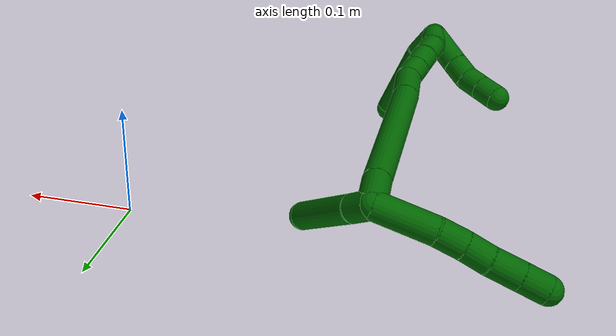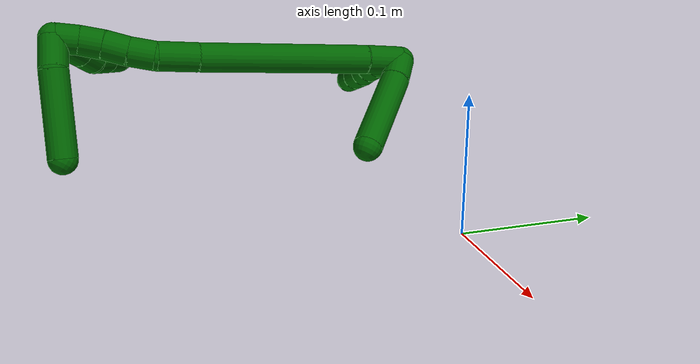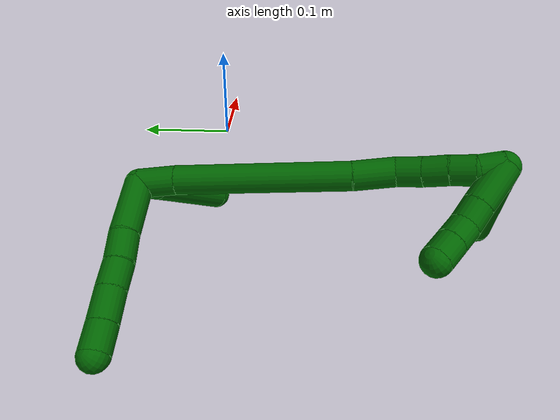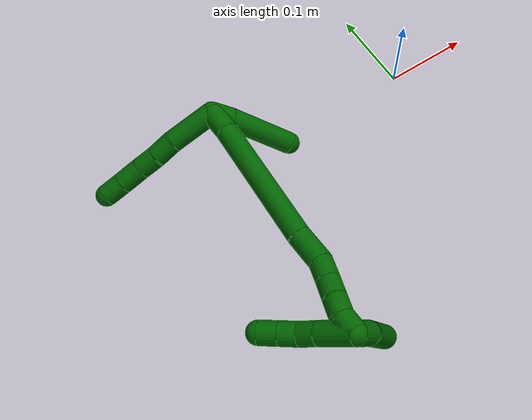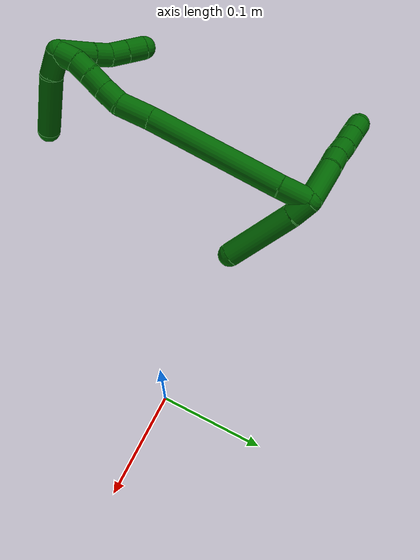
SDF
<sdf version="1.7">
 <world name="default">
  <model name="6">
   <static>0</static>
   <link name="6">
    <collision name="collision-cylinder-e_1_2_8">
     <pose>0.026761 -0.00076 -0.003194 2.90809 1.44873 2.87802</pose>
     <geometry><cylinder><radius>0.0125</radius><length>0.053922</length></cylinder></geometry>
     <surface>
      <friction><ode><mu>1.16</mu><mu2>1.16</mu2><slip1>0</slip1><slip2>0</slip2></ode></friction>
      <contact><ode><kp>1e+06</kp><kd>1</kd><max_vel>0</max_vel><min_depth>0.001</min_depth></ode></contact>
     </surface>
    </collision>
    <visual name="visual-cylinder-e_1_2_8">
     <pose>0.026761 -0.00076 -0.003194 2.90809 1.44873 2.87802</pose>
     <geometry><cylinder><radius>0.0125</radius><length>0.053922</length></cylinder></geometry>
     <material><ambient>0 0.392157 0.003922 1</ambient></material>
    </visual>
    <collision name="collision-cylinder-e_2_8_9">
     <pose>0.065595 -0.001481 -0.006166 -0.170965 1.55214 -0.16782</pose>
     <geometry><cylinder><radius>0.0125</radius><length>0.024152</length></cylinder></geometry>
     <surface>
      <friction><ode><mu>1.16</mu><mu2>1.16</mu2><slip1>0</slip1><slip2>0</slip2></ode></friction>
      <contact><ode><kp>1e+06</kp><kd>1</kd><max_vel>0</max_vel><min_depth>0.001</min_depth></ode></contact>
     </surface>
    </collision>
    <visual name="visual-cylinder-e_2_8_9">
     <pose>0.065595 -0.001481 -0.006166 -0.170965 1.55214 -0.16782</pose>
     <geometry><cylinder><radius>0.0125</radius><length>0.024152</length></cylinder></geometry>
     <material><ambient>0 0.392157 0.003922 1</ambient></material>
    </visual>
    <collision name="collision-cylinder-e_3_9_10">
     <pose>0.088869 -0.000332 -0.006255 -1.84441 1.46815 -1.74419</pose>
     <geometry><cylinder><radius>0.0125</radius><length>0.022518</length></cylinder></geometry>
     <surface>
      <friction><ode><mu>1.16</mu><mu2>1.16</mu2><slip1>0</slip1><slip2>0</slip2></ode></friction>
      <contact><ode><kp>1e+06</kp><kd>1</kd><max_vel>0</max_vel><min_depth>0.001</min_depth></ode></contact>
     </surface>
    </collision>
    <visual name="visual-cylinder-e_3_9_10">
     <pose>0.088869 -0.000332 -0.006255 -1.84441 1.46815 -1.74419</pose>
     <geometry><cylinder><radius>0.0125</radius><length>0.022518</length></cylinder></geometry>
     <material><ambient>0 0.392157 0.003922 1</ambient></material>
    </visual>
    <collision name="collision-cylinder-e_4_10_11">
     <pose>0.113372 0.001067 -0.007075 -2.62543 1.52694 -2.60337</pose>
     <geometry><cylinder><radius>0.0125</radius><length>0.026631</length></cylinder></geometry>
     <surface>
      <friction><ode><mu>1.16</mu><mu2>1.16</mu2><slip1>0</slip1><slip2>0</slip2></ode></friction>
      <contact><ode><kp>1e+06</kp><kd>1</kd><max_vel>0</max_vel><min_depth>0.001</min_depth></ode></contact>
     </surface>
    </collision>
    <visual name="visual-cylinder-e_4_10_11">
     <pose>0.113372 0.001067 -0.007075 -2.62543 1.52694 -2.60337</pose>
     <geometry><cylinder><radius>0.0125</radius><length>0.026631</length></cylinder></geometry>
     <material><ambient>0 0.392157 0.003922 1</ambient></material>
    </visual>
    <collision name="collision-cylinder-e_5_11_6">
     <pose>0.138037 0.001787 -0.008204 -2.53397 1.50433 -2.49495</pose>
     <geometry><cylinder><radius>0.0125</radius><length>0.022776</length></cylinder></geometry>
     <surface>
      <friction><ode><mu>1.16</mu><mu2>1.16</mu2><slip1>0</slip1><slip2>0</slip2></ode></friction>
      <contact><ode><kp>1e+06</kp><kd>1</kd><max_vel>0</max_vel><min_depth>0.001</min_depth></ode></contact>
     </surface>
    </collision>
    <visual name="visual-cylinder-e_5_11_6">
     <pose>0.138037 0.001787 -0.008204 -2.53397 1.50433 -2.49495</pose>
     <geometry><cylinder><radius>0.0125</radius><length>0.022776</length></cylinder></geometry>
     <material><ambient>0 0.392157 0.003922 1</ambient></material>
    </visual>
    <collision name="collision-cylinder-e_1_2_12">
     <pose>-0.005018 0.000103 0.010534 -0.009766 -0.444502 0.002207</pose>
     <geometry><cylinder><radius>0.0125</radius><length>0.023338</length></cylinder></geometry>
     <surface>
      <friction><ode><mu>1.16</mu><mu2>1.16</mu2><slip1>0</slip1><slip2>0</slip2></ode></friction>
      <contact><ode><kp>1e+06</kp><kd>1</kd><max_vel>0</max_vel><min_depth>0.001</min_depth></ode></contact>
     </surface>
    </collision>
    <visual name="visual-cylinder-e_1_2_12">
     <pose>-0.005018 0.000103 0.010534 -0.009766 -0.444502 0.002207</pose>
     <geometry><cylinder><radius>0.0125</radius><length>0.023338</length></cylinder></geometry>
     <material><ambient>0 0.392157 0.003922 1</ambient></material>
    </visual>
    <collision name="collision-cylinder-e_2_12_5">
     <pose>-0.024049 -0.002892 0.056612 0.086933 -0.374281 -0.016471</pose>
     <geometry><cylinder><radius>0.0125</radius><length>0.076662</length></cylinder></geometry>
     <surface>
      <friction><ode><mu>1.16</mu><mu2>1.16</mu2><slip1>0</slip1><slip2>0</slip2></ode></friction>
      <contact><ode><kp>1e+06</kp><kd>1</kd><max_vel>0</max_vel><min_depth>0.001</min_depth></ode></contact>
     </surface>
    </collision>
    <visual name="visual-cylinder-e_2_12_5">
     <pose>-0.024049 -0.002892 0.056612 0.086933 -0.374281 -0.016471</pose>
     <geometry><cylinder><radius>0.0125</radius><length>0.076662</length></cylinder></geometry>
     <material><ambient>0 0.392157 0.003922 1</ambient></material>
    </visual>
    <collision name="collision-cylinder-e_1_2_13">
     <pose>-0.000781 -0.014338 0.007172 1.10698 -0.048667 -0.030076</pose>
     <geometry><cylinder><radius>0.0125</radius><length>0.0321</length></cylinder></geometry>
     <surface>
      <friction><ode><mu>1.16</mu><mu2>1.16</mu2><slip1>0</slip1><slip2>0</slip2></ode></friction>
      <contact><ode><kp>1e+06</kp><kd>1</kd><max_vel>0</max_vel><min_depth>0.001</min_depth></ode></contact>
     </surface>
    </collision>
    <visual name="visual-cylinder-e_1_2_13">
     <pose>-0.000781 -0.014338 0.007172 1.10698 -0.048667 -0.030076</pose>
     <geometry><cylinder><radius>0.0125</radius><length>0.0321</length></cylinder></geometry>
     <material><ambient>0 0.392157 0.003922 1</ambient></material>
    </visual>
    <collision name="collision-cylinder-e_2_13_14">
     <pose>0.000383 -0.094285 0.048349 1.09261 0.026312 0.015999</pose>
     <geometry><cylinder><radius>0.0125</radius><length>0.147849</length></cylinder></geometry>
     <surface>
      <friction><ode><mu>1.16</mu><mu2>1.16</mu2><slip1>0</slip1><slip2>0</slip2></ode></friction>
      <contact><ode><kp>1e+06</kp><kd>1</kd><max_vel>0</max_vel><min_depth>0.001</min_depth></ode></contact>
     </surface>
    </collision>
    <visual name="visual-cylinder-e_2_13_14">
     <pose>0.000383 -0.094285 0.048349 1.09261 0.026312 0.015999</pose>
     <geometry><cylinder><radius>0.0125</radius><length>0.147849</length></cylinder></geometry>
     <material><ambient>0 0.392157 0.003922 1</ambient></material>
    </visual>
    <collision name="collision-cylinder-e_3_14_15">
     <pose>0.001242 -0.17577 0.090541 1.09469 -0.060752 -0.037033</pose>
     <geometry><cylinder><radius>0.0125</radius><length>0.035789</length></cylinder></geometry>
     <surface>
      <friction><ode><mu>1.16</mu><mu2>1.16</mu2><slip1>0</slip1><slip2>0</slip2></ode></friction>
      <contact><ode><kp>1e+06</kp><kd>1</kd><max_vel>0</max_vel><min_depth>0.001</min_depth></ode></contact>
     </surface>
    </collision>
    <visual name="visual-cylinder-e_3_14_15">
     <pose>0.001242 -0.17577 0.090541 1.09469 -0.060752 -0.037033</pose>
     <geometry><cylinder><radius>0.0125</radius><length>0.035789</length></cylinder></geometry>
     <material><ambient>0 0.392157 0.003922 1</ambient></material>
    </visual>
    <collision name="collision-cylinder-e_4_15_16">
     <pose>0.002271 -0.202076 0.101726 1.29088 0.192484 0.14514</pose>
     <geometry><cylinder><radius>0.0125</radius><length>0.022116</length></cylinder></geometry>
     <surface>
      <friction><ode><mu>1.16</mu><mu2>1.16</mu2><slip1>0</slip1><slip2>0</slip2></ode></friction>
      <contact><ode><kp>1e+06</kp><kd>1</kd><max_vel>0</max_vel><min_depth>0.001</min_depth></ode></contact>
     </surface>
    </collision>
    <visual name="visual-cylinder-e_4_15_16">
     <pose>0.002271 -0.202076 0.101726 1.29088 0.192484 0.14514</pose>
     <geometry><cylinder><radius>0.0125</radius><length>0.022116</length></cylinder></geometry>
     <material><ambient>0 0.392157 0.003922 1</ambient></material>
    </visual>
    <collision name="collision-cylinder-e_5_16_17">
     <pose>0.006289 -0.22272 0.106669 1.38261 0.181036 0.149942</pose>
     <geometry><cylinder><radius>0.0125</radius><length>0.021137</length></cylinder></geometry>
     <surface>
      <friction><ode><mu>1.16</mu><mu2>1.16</mu2><slip1>0</slip1><slip2>0</slip2></ode></friction>
      <contact><ode><kp>1e+06</kp><kd>1</kd><max_vel>0</max_vel><min_depth>0.001</min_depth></ode></contact>
     </surface>
    </collision>
    <visual name="visual-cylinder-e_5_16_17">
     <pose>0.006289 -0.22272 0.106669 1.38261 0.181036 0.149942</pose>
     <geometry><cylinder><radius>0.0125</radius><length>0.021137</length></cylinder></geometry>
     <material><ambient>0 0.392157 0.003922 1</ambient></material>
    </visual>
    <collision name="collision-cylinder-e_6_17_18">
     <pose>0.010269 -0.242609 0.11129 1.30098 0.203983 0.155453</pose>
     <geometry><cylinder><radius>0.0125</radius><length>0.020504</length></cylinder></geometry>
     <surface>
      <friction><ode><mu>1.16</mu><mu2>1.16</mu2><slip1>0</slip1><slip2>0</slip2></ode></friction>
      <contact><ode><kp>1e+06</kp><kd>1</kd><max_vel>0</max_vel><min_depth>0.001</min_depth></ode></contact>
     </surface>
    </collision>
    <visual name="visual-cylinder-e_6_17_18">
     <pose>0.010269 -0.242609 0.11129 1.30098 0.203983 0.155453</pose>
     <geometry><cylinder><radius>0.0125</radius><length>0.020504</length></cylinder></geometry>
     <material><ambient>0 0.392157 0.003922 1</ambient></material>
    </visual>
    <collision name="collision-cylinder-e_7_18_1">
     <pose>0.011578 -0.26163 0.118112 1.15325 -0.074937 -0.048749</pose>
     <geometry><cylinder><radius>0.0125</radius><length>0.020504</length></cylinder></geometry>
     <surface>
      <friction><ode><mu>1.16</mu><mu2>1.16</mu2><slip1>0</slip1><slip2>0</slip2></ode></friction>
      <contact><ode><kp>1e+06</kp><kd>1</kd><max_vel>0</max_vel><min_depth>0.001</min_depth></ode></contact>
     </surface>
    </collision>
    <visual name="visual-cylinder-e_7_18_1">
     <pose>0.011578 -0.26163 0.118112 1.15325 -0.074937 -0.048749</pose>
     <geometry><cylinder><radius>0.0125</radius><length>0.020504</length></cylinder></geometry>
     <material><ambient>0 0.392157 0.003922 1</ambient></material>
    </visual>
    <collision name="collision-cylinder-e_1_1_19">
     <pose>0.00826 -0.264957 0.13422 -0.466088 -0.18817 0.044788</pose>
     <geometry><cylinder><radius>0.0125</radius><length>0.027263</length></cylinder></geometry>
     <surface>
      <friction><ode><mu>1.16</mu><mu2>1.16</mu2><slip1>0</slip1><slip2>0</slip2></ode></friction>
      <contact><ode><kp>1e+06</kp><kd>1</kd><max_vel>0</max_vel><min_depth>0.001</min_depth></ode></contact>
     </surface>
    </collision>
    <visual name="visual-cylinder-e_1_1_19">
     <pose>0.00826 -0.264957 0.13422 -0.466088 -0.18817 0.044788</pose>
     <geometry><cylinder><radius>0.0125</radius><length>0.027263</length></cylinder></geometry>
     <material><ambient>0 0.392157 0.003922 1</ambient></material>
    </visual>
    <collision name="collision-cylinder-e_2_19_4">
     <pose>0.006611 -0.239312 0.176787 -0.570256 0.024755 -0.007256</pose>
     <geometry><cylinder><radius>0.0125</radius><length>0.072737</length></cylinder></geometry>
     <surface>
      <friction><ode><mu>1.16</mu><mu2>1.16</mu2><slip1>0</slip1><slip2>0</slip2></ode></friction>
      <contact><ode><kp>1e+06</kp><kd>1</kd><max_vel>0</max_vel><min_depth>0.001</min_depth></ode></contact>
     </surface>
    </collision>
    <visual name="visual-cylinder-e_2_19_4">
     <pose>0.006611 -0.239312 0.176787 -0.570256 0.024755 -0.007256</pose>
     <geometry><cylinder><radius>0.0125</radius><length>0.072737</length></cylinder></geometry>
     <material><ambient>0 0.392157 0.003922 1</ambient></material>
    </visual>
    <collision name="collision-cylinder-e_1_1_20">
     <pose>0.025895 -0.258805 0.119391 -1.80217 0.878676 -1.07134</pose>
     <geometry><cylinder><radius>0.0125</radius><length>0.039186</length></cylinder></geometry>
     <surface>
      <friction><ode><mu>1.16</mu><mu2>1.16</mu2><slip1>0</slip1><slip2>0</slip2></ode></friction>
      <contact><ode><kp>1e+06</kp><kd>1</kd><max_vel>0</max_vel><min_depth>0.001</min_depth></ode></contact>
     </surface>
    </collision>
    <visual name="visual-cylinder-e_1_1_20">
     <pose>0.025895 -0.258805 0.119391 -1.80217 0.878676 -1.07134</pose>
     <geometry><cylinder><radius>0.0125</radius><length>0.039186</length></cylinder></geometry>
     <material><ambient>0 0.392157 0.003922 1</ambient></material>
    </visual>
    <collision name="collision-cylinder-e_2_20_21">
     <pose>0.049 -0.240515 0.115032 -1.80985 0.905069 -1.10841</pose>
     <geometry><cylinder><radius>0.0125</radius><length>0.020396</length></cylinder></geometry>
     <surface>
      <friction><ode><mu>1.16</mu><mu2>1.16</mu2><slip1>0</slip1><slip2>0</slip2></ode></friction>
      <contact><ode><kp>1e+06</kp><kd>1</kd><max_vel>0</max_vel><min_depth>0.001</min_depth></ode></contact>
     </surface>
    </collision>
    <visual name="visual-cylinder-e_2_20_21">
     <pose>0.049 -0.240515 0.115032 -1.80985 0.905069 -1.10841</pose>
     <geometry><cylinder><radius>0.0125</radius><length>0.020396</length></cylinder></geometry>
     <material><ambient>0 0.392157 0.003922 1</ambient></material>
    </visual>
    <collision name="collision-cylinder-e_3_21_22">
     <pose>0.064681 -0.229658 0.109171 -2.31592 0.871394 -1.6317</pose>
     <geometry><cylinder><radius>0.0125</radius><length>0.020022</length></cylinder></geometry>
     <surface>
      <friction><ode><mu>1.16</mu><mu2>1.16</mu2><slip1>0</slip1><slip2>0</slip2></ode></friction>
      <contact><ode><kp>1e+06</kp><kd>1</kd><max_vel>0</max_vel><min_depth>0.001</min_depth></ode></contact>
     </surface>
    </collision>
    <visual name="visual-cylinder-e_3_21_22">
     <pose>0.064681 -0.229658 0.109171 -2.31592 0.871394 -1.6317</pose>
     <geometry><cylinder><radius>0.0125</radius><length>0.020022</length></cylinder></geometry>
     <material><ambient>0 0.392157 0.003922 1</ambient></material>
    </visual>
    <collision name="collision-cylinder-e_4_22_3">
     <pose>0.080132 -0.22013 0.100289 -2.32613 0.869329 -1.64294</pose>
     <geometry><cylinder><radius>0.0125</radius><length>0.020396</length></cylinder></geometry>
     <surface>
      <friction><ode><mu>1.16</mu><mu2>1.16</mu2><slip1>0</slip1><slip2>0</slip2></ode></friction>
      <contact><ode><kp>1e+06</kp><kd>1</kd><max_vel>0</max_vel><min_depth>0.001</min_depth></ode></contact>
     </surface>
    </collision>
    <visual name="visual-cylinder-e_4_22_3">
     <pose>0.080132 -0.22013 0.100289 -2.32613 0.869329 -1.64294</pose>
     <geometry><cylinder><radius>0.0125</radius><length>0.020396</length></cylinder></geometry>
     <material><ambient>0 0.392157 0.003922 1</ambient></material>
    </visual>
    <collision name="collision-sphere-3">
     <pose>0.087922 -0.215339 0.095777 0 -0 0</pose>
     <geometry><sphere><radius>0.0125</radius></sphere></geometry>
     <surface>
      <friction><ode><mu>1.16</mu><mu2>1.16</mu2><slip1>0</slip1><slip2>0</slip2></ode></friction>
      <contact><ode><kp>1e+06</kp><kd>1</kd><max_vel>0</max_vel><min_depth>0.001</min_depth></ode></contact>
     </surface>
    </collision>
    <visual name="visual-sphere-3">
     <pose>0.087922 -0.215339 0.095777 0 -0 0</pose>
     <geometry><sphere><radius>0.0125</radius></sphere></geometry>
     <material><ambient>0 0.392157 0.003922 1</ambient></material>
    </visual>
    <collision name="collision-sphere-22">
     <pose>0.072341 -0.224922 0.104801 0 -0 0</pose>
     <geometry><sphere><radius>0.0125</radius></sphere></geometry>
     <surface>
      <friction><ode><mu>1.16</mu><mu2>1.16</mu2><slip1>0</slip1><slip2>0</slip2></ode></friction>
      <contact><ode><kp>1e+06</kp><kd>1</kd><max_vel>0</max_vel><min_depth>0.001</min_depth></ode></contact>
     </surface>
    </collision>
    <visual name="visual-sphere-22">
     <pose>0.072341 -0.224922 0.104801 0 -0 0</pose>
     <geometry><sphere><radius>0.0125</radius></sphere></geometry>
     <material><ambient>0 0.392157 0.003922 1</ambient></material>
    </visual>
    <collision name="collision-sphere-21">
     <pose>0.05702 -0.234395 0.11354 0 -0 0</pose>
     <geometry><sphere><radius>0.0125</radius></sphere></geometry>
     <surface>
      <friction><ode><mu>1.16</mu><mu2>1.16</mu2><slip1>0</slip1><slip2>0</slip2></ode></friction>
      <contact><ode><kp>1e+06</kp><kd>1</kd><max_vel>0</max_vel><min_depth>0.001</min_depth></ode></contact>
     </surface>
    </collision>
    <visual name="visual-sphere-21">
     <pose>0.05702 -0.234395 0.11354 0 -0 0</pose>
     <geometry><sphere><radius>0.0125</radius></sphere></geometry>
     <material><ambient>0 0.392157 0.003922 1</ambient></material>
    </visual>
    <collision name="collision-sphere-20">
     <pose>0.04098 -0.246634 0.116523 0 -0 0</pose>
     <geometry><sphere><radius>0.0125</radius></sphere></geometry>
     <surface>
      <friction><ode><mu>1.16</mu><mu2>1.16</mu2><slip1>0</slip1><slip2>0</slip2></ode></friction>
      <contact><ode><kp>1e+06</kp><kd>1</kd><max_vel>0</max_vel><min_depth>0.001</min_depth></ode></contact>
     </surface>
    </collision>
    <visual name="visual-sphere-20">
     <pose>0.04098 -0.246634 0.116523 0 -0 0</pose>
     <geometry><sphere><radius>0.0125</radius></sphere></geometry>
     <material><ambient>0 0.392157 0.003922 1</ambient></material>
    </visual>
    <collision name="collision-sphere-4">
     <pose>0.007511 -0.219685 0.207391 0 -0 0</pose>
     <geometry><sphere><radius>0.0125</radius></sphere></geometry>
     <surface>
      <friction><ode><mu>1.16</mu><mu2>1.16</mu2><slip1>0</slip1><slip2>0</slip2></ode></friction>
      <contact><ode><kp>1e+06</kp><kd>1</kd><max_vel>0</max_vel><min_depth>0.001</min_depth></ode></contact>
     </surface>
    </collision>
    <visual name="visual-sphere-4">
     <pose>0.007511 -0.219685 0.207391 0 -0 0</pose>
     <geometry><sphere><radius>0.0125</radius></sphere></geometry>
     <material><ambient>0 0.392157 0.003922 1</ambient></material>
    </visual>
    <collision name="collision-sphere-6">
     <pose>0.1494 0.002219 -0.008824 0 -0 0</pose>
     <geometry><sphere><radius>0.0125</radius></sphere></geometry>
     <surface>
      <friction><ode><mu>1.16</mu><mu2>1.16</mu2><slip1>0</slip1><slip2>0</slip2></ode></friction>
      <contact><ode><kp>1e+06</kp><kd>1</kd><max_vel>0</max_vel><min_depth>0.001</min_depth></ode></contact>
     </surface>
    </collision>
    <visual name="visual-sphere-6">
     <pose>0.1494 0.002219 -0.008824 0 -0 0</pose>
     <geometry><sphere><radius>0.0125</radius></sphere></geometry>
     <material><ambient>0 0.392157 0.003922 1</ambient></material>
    </visual>
    <collision name="collision-sphere-11">
     <pose>0.126674 0.001355 -0.007583 0 -0 0</pose>
     <geometry><sphere><radius>0.0125</radius></sphere></geometry>
     <surface>
      <friction><ode><mu>1.16</mu><mu2>1.16</mu2><slip1>0</slip1><slip2>0</slip2></ode></friction>
      <contact><ode><kp>1e+06</kp><kd>1</kd><max_vel>0</max_vel><min_depth>0.001</min_depth></ode></contact>
     </surface>
    </collision>
    <visual name="visual-sphere-11">
     <pose>0.126674 0.001355 -0.007583 0 -0 0</pose>
     <geometry><sphere><radius>0.0125</radius></sphere></geometry>
     <material><ambient>0 0.392157 0.003922 1</ambient></material>
    </visual>
    <collision name="collision-sphere-10">
     <pose>0.100069 0.000779 -0.006567 0 -0 0</pose>
     <geometry><sphere><radius>0.0125</radius></sphere></geometry>
     <surface>
      <friction><ode><mu>1.16</mu><mu2>1.16</mu2><slip1>0</slip1><slip2>0</slip2></ode></friction>
      <contact><ode><kp>1e+06</kp><kd>1</kd><max_vel>0</max_vel><min_depth>0.001</min_depth></ode></contact>
     </surface>
    </collision>
    <visual name="visual-sphere-10">
     <pose>0.100069 0.000779 -0.006567 0 -0 0</pose>
     <geometry><sphere><radius>0.0125</radius></sphere></geometry>
     <material><ambient>0 0.392157 0.003922 1</ambient></material>
    </visual>
    <collision name="collision-sphere-9">
     <pose>0.077669 -0.001443 -0.005944 0 -0 0</pose>
     <geometry><sphere><radius>0.0125</radius></sphere></geometry>
     <surface>
      <friction><ode><mu>1.16</mu><mu2>1.16</mu2><slip1>0</slip1><slip2>0</slip2></ode></friction>
      <contact><ode><kp>1e+06</kp><kd>1</kd><max_vel>0</max_vel><min_depth>0.001</min_depth></ode></contact>
     </surface>
    </collision>
    <visual name="visual-sphere-9">
     <pose>0.077669 -0.001443 -0.005944 0 -0 0</pose>
     <geometry><sphere><radius>0.0125</radius></sphere></geometry>
     <material><ambient>0 0.392157 0.003922 1</ambient></material>
    </visual>
    <collision name="collision-sphere-2">
     <geometry><sphere><radius>0.0125</radius></sphere></geometry>
     <surface>
      <friction><ode><mu>1.16</mu><mu2>1.16</mu2><slip1>0</slip1><slip2>0</slip2></ode></friction>
      <contact><ode><kp>1e+06</kp><kd>1</kd><max_vel>0</max_vel><min_depth>0.001</min_depth></ode></contact>
     </surface>
    </collision>
    <visual name="visual-sphere-2">
     <geometry><sphere><radius>0.0125</radius></sphere></geometry>
     <material><ambient>0 0.392157 0.003922 1</ambient></material>
    </visual>
    <collision name="collision-sphere-19">
     <pose>0.00571 -0.25894 0.146183 0 -0 0</pose>
     <geometry><sphere><radius>0.0125</radius></sphere></geometry>
     <surface>
      <friction><ode><mu>1.16</mu><mu2>1.16</mu2><slip1>0</slip1><slip2>0</slip2></ode></friction>
      <contact><ode><kp>1e+06</kp><kd>1</kd><max_vel>0</max_vel><min_depth>0.001</min_depth></ode></contact>
     </surface>
    </collision>
    <visual name="visual-sphere-19">
     <pose>0.00571 -0.25894 0.146183 0 -0 0</pose>
     <geometry><sphere><radius>0.0125</radius></sphere></geometry>
     <material><ambient>0 0.392157 0.003922 1</ambient></material>
    </visual>
    <collision name="collision-sphere-8">
     <pose>0.053521 -0.001519 -0.006388 0 -0 0</pose>
     <geometry><sphere><radius>0.0125</radius></sphere></geometry>
     <surface>
      <friction><ode><mu>1.16</mu><mu2>1.16</mu2><slip1>0</slip1><slip2>0</slip2></ode></friction>
      <contact><ode><kp>1e+06</kp><kd>1</kd><max_vel>0</max_vel><min_depth>0.001</min_depth></ode></contact>
     </surface>
    </collision>
    <visual name="visual-sphere-8">
     <pose>0.053521 -0.001519 -0.006388 0 -0 0</pose>
     <geometry><sphere><radius>0.0125</radius></sphere></geometry>
     <material><ambient>0 0.392157 0.003922 1</ambient></material>
    </visual>
    <collision name="collision-sphere-12">
     <pose>-0.010035 0.000206 0.021069 0 -0 0</pose>
     <geometry><sphere><radius>0.0125</radius></sphere></geometry>
     <surface>
      <friction><ode><mu>1.16</mu><mu2>1.16</mu2><slip1>0</slip1><slip2>0</slip2></ode></friction>
      <contact><ode><kp>1e+06</kp><kd>1</kd><max_vel>0</max_vel><min_depth>0.001</min_depth></ode></contact>
     </surface>
    </collision>
    <visual name="visual-sphere-12">
     <pose>-0.010035 0.000206 0.021069 0 -0 0</pose>
     <geometry><sphere><radius>0.0125</radius></sphere></geometry>
     <material><ambient>0 0.392157 0.003922 1</ambient></material>
    </visual>
    <collision name="collision-sphere-5">
     <pose>-0.038063 -0.00599 0.092154 0 -0 0</pose>
     <geometry><sphere><radius>0.0125</radius></sphere></geometry>
     <surface>
      <friction><ode><mu>1.16</mu><mu2>1.16</mu2><slip1>0</slip1><slip2>0</slip2></ode></friction>
      <contact><ode><kp>1e+06</kp><kd>1</kd><max_vel>0</max_vel><min_depth>0.001</min_depth></ode></contact>
     </surface>
    </collision>
    <visual name="visual-sphere-5">
     <pose>-0.038063 -0.00599 0.092154 0 -0 0</pose>
     <geometry><sphere><radius>0.0125</radius></sphere></geometry>
     <material><ambient>0 0.392157 0.003922 1</ambient></material>
    </visual>
    <collision name="collision-sphere-13">
     <pose>-0.001562 -0.028675 0.014344 0 -0 0</pose>
     <geometry><sphere><radius>0.0125</radius></sphere></geometry>
     <surface>
      <friction><ode><mu>1.16</mu><mu2>1.16</mu2><slip1>0</slip1><slip2>0</slip2></ode></friction>
      <contact><ode><kp>1e+06</kp><kd>1</kd><max_vel>0</max_vel><min_depth>0.001</min_depth></ode></contact>
     </surface>
    </collision>
    <visual name="visual-sphere-13">
     <pose>-0.001562 -0.028675 0.014344 0 -0 0</pose>
     <geometry><sphere><radius>0.0125</radius></sphere></geometry>
     <material><ambient>0 0.392157 0.003922 1</ambient></material>
    </visual>
    <collision name="collision-sphere-14">
     <pose>0.002328 -0.159895 0.082355 0 -0 0</pose>
     <geometry><sphere><radius>0.0125</radius></sphere></geometry>
     <surface>
      <friction><ode><mu>1.16</mu><mu2>1.16</mu2><slip1>0</slip1><slip2>0</slip2></ode></friction>
      <contact><ode><kp>1e+06</kp><kd>1</kd><max_vel>0</max_vel><min_depth>0.001</min_depth></ode></contact>
     </surface>
    </collision>
    <visual name="visual-sphere-14">
     <pose>0.002328 -0.159895 0.082355 0 -0 0</pose>
     <geometry><sphere><radius>0.0125</radius></sphere></geometry>
     <material><ambient>0 0.392157 0.003922 1</ambient></material>
    </visual>
    <collision name="collision-sphere-15">
     <pose>0.000155 -0.191644 0.098727 0 -0 0</pose>
     <geometry><sphere><radius>0.0125</radius></sphere></geometry>
     <surface>
      <friction><ode><mu>1.16</mu><mu2>1.16</mu2><slip1>0</slip1><slip2>0</slip2></ode></friction>
      <contact><ode><kp>1e+06</kp><kd>1</kd><max_vel>0</max_vel><min_depth>0.001</min_depth></ode></contact>
     </surface>
    </collision>
    <visual name="visual-sphere-15">
     <pose>0.000155 -0.191644 0.098727 0 -0 0</pose>
     <geometry><sphere><radius>0.0125</radius></sphere></geometry>
     <material><ambient>0 0.392157 0.003922 1</ambient></material>
    </visual>
    <collision name="collision-sphere-16">
     <pose>0.004386 -0.212507 0.104725 0 -0 0</pose>
     <geometry><sphere><radius>0.0125</radius></sphere></geometry>
     <surface>
      <friction><ode><mu>1.16</mu><mu2>1.16</mu2><slip1>0</slip1><slip2>0</slip2></ode></friction>
      <contact><ode><kp>1e+06</kp><kd>1</kd><max_vel>0</max_vel><min_depth>0.001</min_depth></ode></contact>
     </surface>
    </collision>
    <visual name="visual-sphere-16">
     <pose>0.004386 -0.212507 0.104725 0 -0 0</pose>
     <geometry><sphere><radius>0.0125</radius></sphere></geometry>
     <material><ambient>0 0.392157 0.003922 1</ambient></material>
    </visual>
    <collision name="collision-sphere-17">
     <pose>0.008192 -0.232932 0.108614 0 -0 0</pose>
     <geometry><sphere><radius>0.0125</radius></sphere></geometry>
     <surface>
      <friction><ode><mu>1.16</mu><mu2>1.16</mu2><slip1>0</slip1><slip2>0</slip2></ode></friction>
      <contact><ode><kp>1e+06</kp><kd>1</kd><max_vel>0</max_vel><min_depth>0.001</min_depth></ode></contact>
     </surface>
    </collision>
    <visual name="visual-sphere-17">
     <pose>0.008192 -0.232932 0.108614 0 -0 0</pose>
     <geometry><sphere><radius>0.0125</radius></sphere></geometry>
     <material><ambient>0 0.392157 0.003922 1</ambient></material>
    </visual>
    <collision name="collision-sphere-18">
     <pose>0.012345 -0.252285 0.113966 0 -0 0</pose>
     <geometry><sphere><radius>0.0125</radius></sphere></geometry>
     <surface>
      <friction><ode><mu>1.16</mu><mu2>1.16</mu2><slip1>0</slip1><slip2>0</slip2></ode></friction>
      <contact><ode><kp>1e+06</kp><kd>1</kd><max_vel>0</max_vel><min_depth>0.001</min_depth></ode></contact>
     </surface>
    </collision>
    <visual name="visual-sphere-18">
     <pose>0.012345 -0.252285 0.113966 0 -0 0</pose>
     <geometry><sphere><radius>0.0125</radius></sphere></geometry>
     <material><ambient>0 0.392157 0.003922 1</ambient></material>
    </visual>
    <collision name="collision-sphere-1">
     <pose>0.01081 -0.270975 0.122258 0 -0 0</pose>
     <geometry><sphere><radius>0.0125</radius></sphere></geometry>
     <surface>
      <friction><ode><mu>1.16</mu><mu2>1.16</mu2><slip1>0</slip1><slip2>0</slip2></ode></friction>
      <contact><ode><kp>1e+06</kp><kd>1</kd><max_vel>0</max_vel><min_depth>0.001</min_depth></ode></contact>
     </surface>
    </collision>
    <visual name="visual-sphere-1">
     <pose>0.01081 -0.270975 0.122258 0 -0 0</pose>
     <geometry><sphere><radius>0.0125</radius></sphere></geometry>
     <material><ambient>0 0.392157 0.003922 1</ambient></material>
    </visual>
    <inertial>
     <pose>0.020783 -0.118942 0.068467 0 -0 0</pose>
     <mass>0.75</mass>
     <inertia>
      <ixx>0.000381</ixx>
      <ixy>0</ixy>
      <ixz>0</ixz>
      <iyy>0.000221</iyy>
      <iyz>0</iyz>
      <izz>0.000232</izz>
     </inertia>
    </inertial>
   </link>
   <pose>-0.225565 0.042519 0.065331 -2.56761 0.410118 -3.11165</pose>
  </model>
 </world>
</sdf>
